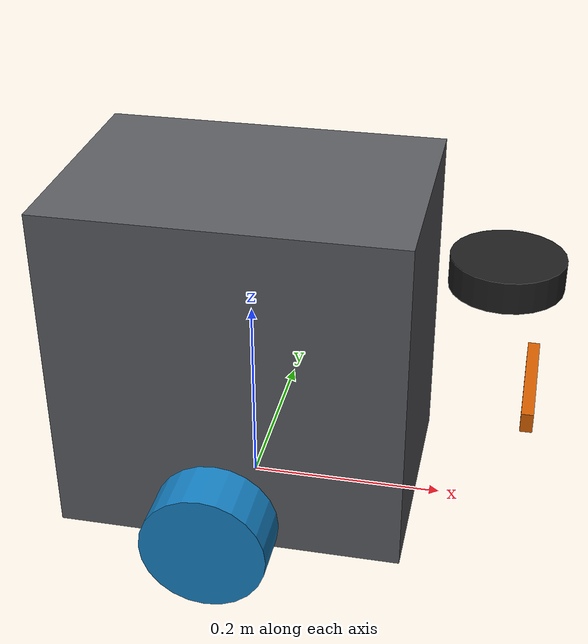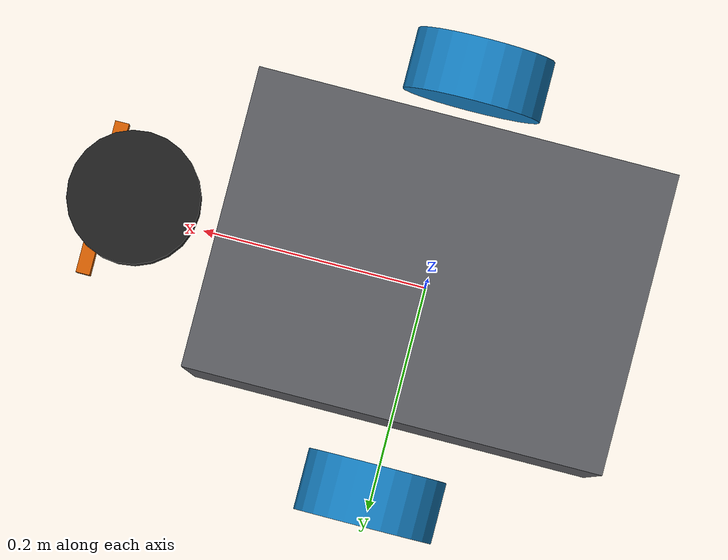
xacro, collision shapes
<?xml version="1.0" ?>
<robot name="turtlebot3_waffle" xmlns:xacro="http://ros.org/wiki/xacro">

  <xacro:include filename="$(find turtlebot3_description)/urdf/common_properties.xacro"/>
  <xacro:include filename="$(find turtlebot3_description)/urdf/freight.gazebo.xacro"/>

  <xacro:property name="r200_cam_rgb_px" value="0.005"/>
  <xacro:property name="r200_cam_rgb_py" value="0.018"/>
  <xacro:property name="r200_cam_rgb_pz" value="0.013"/>
  <xacro:property name="r200_cam_depth_offset" value="0.01"/>

  <!-- All links and joints of robot are defined in this file -->

  <!-- Base link of the robot -->
  <link name="base_link">
    <visual>
      <origin xyz="0 0 0" rpy="0 0 0"/>
      <geometry>
        <mesh filename="package://turtlebot3_description/meshes/freight/base_link.dae"/>
      </geometry>
      <material name="">
        <color rgba="0.356 0.361 0.376 1" />
      </material>
    </visual>

    <!-- Collision model of this link -->
    <collision>
      <origin xyz="0 0 0.175" rpy="0 0 0"/>
      <geometry>
        <box size="0.35 0.25 0.345"/>
      </geometry>
    </collision>

    <!-- inertial model of this link -->
    <inertial>
      <origin xyz="0 0 0.175" rpy="0 0 0"/>
      <mass value="5.0"/>
      <inertia ixx="0.16354167" ixy="0.0" ixz="0.0"
               iyy="0.16354167" iyz="0.0"
               izz="0.225" />
    </inertial>
  </link>

  <!-- Creating the joint between base and left wheel -->
  <joint name="wheel_left_joint" type="continuous">
    <parent link="base_link"/>
    <child link="wheel_left_link"/>
    <origin xyz="0.0012914 0.18738 0.060325" rpy="-1.57 0 0"/>
    <axis xyz="0 0 1"/>
  </joint>

  <!-- Left wheel link -->
  <link name="wheel_left_link">
    <visual>
      <origin rpy="1.57 0 0" xyz="0 0 0" />
      <geometry>
        <mesh filename="package://turtlebot3_description/meshes/freight/l_wheel_link.STL" />
      </geometry>
      <material name="">
        <color rgba="0.086 0.506 0.767 1" />
      </material>
    </visual>

    <collision>
      <origin xyz="0 0 0" rpy="0 0 0"/>
      <geometry>
        <cylinder length="0.054" radius="0.061"/>
      </geometry>
    </collision>

    <inertial>
      <origin xyz="0 0 0" />
      <mass value="2.8498940e-02" />
      <inertia ixx="1.1175580e-05" ixy="-4.2369783e-11" ixz="-5.9381719e-09"
               iyy="1.1192413e-05" iyz="-1.4400107e-11"
               izz="2.0712558e-05" />
      </inertial>
  </link>

  <!-- Right wheel joint -->
  <joint name="wheel_right_joint" type="continuous">
    <parent link="base_link"/>
    <child link="wheel_right_link"/>
    <origin xyz="0.0012914 -0.18738 0.060325" rpy="-1.57 0 0"/>
    <axis xyz="0 0 1"/>
  </joint>

  <!-- Right wheel link -->
  <link name="wheel_right_link">
    <visual>
      <origin rpy="1.57 0 0" xyz="0 0 0" />
      <geometry>
        <mesh filename="package://turtlebot3_description/meshes/freight/l_wheel_link.STL" />
      </geometry>
      <material name="">
        <color rgba="0.086 0.506 0.767 1" />
      </material>
    </visual>

    <collision>
      <origin xyz="0 0 0" rpy="0 0 0"/>
      <geometry>
        <cylinder length="0.054" radius="0.061"/>
      </geometry>
    </collision>

    <inertial>
      <origin xyz="0 0 0" />
      <mass value="2.8498940e-02" />
      <inertia ixx="1.1175580e-05" ixy="-4.2369783e-11" ixz="-5.9381719e-09"
               iyy="1.1192413e-05" iyz="-1.4400107e-11"
               izz="2.0712558e-05" />
      </inertial>
  </link>

  <!-- Defining links and joints for all snesors -->
  <!-- IMU -->
  <joint name="imu_joint" type="fixed">
    <parent link="base_link"/>
    <child link="imu_link"/>
    <origin xyz="0.0 0 0.068" rpy="0 0 0"/>
  </joint>

  <link name="imu_link"/>

  <!-- 2D LIDAR -->
  <joint name="scan_joint" type="fixed">
    <parent link="base_link"/>
    <child link="base_scan"/>
    <origin rpy="0 0 0" xyz="0.235 0 0.2778" />
  </joint>

  <link name="base_scan">
    <visual>
      <origin xyz="0 0 0" rpy="0 0 0"/>
      <geometry>
        <mesh filename="package://turtlebot3_description/meshes/sensors/lds.stl" scale="0.001 0.001 0.001"/>
      </geometry>
      <material name="dark"/>
    </visual>

    <collision>
      <origin xyz="0.015 0 -0.0065" rpy="0 0 0"/>
      <geometry>
        <cylinder length="0.0315" radius="0.055"/>
      </geometry>
    </collision>

    <inertial>
      <mass value="0.114" />
      <origin xyz="0 0 0" />
      <inertia ixx="0.001" ixy="0.0" ixz="0.0"
               iyy="0.001" iyz="0.0"
               izz="0.001" />
    </inertial>
  </link>

  <!-- RGBD Camera -->

  <joint name="camera_joint" type="fixed">
    <origin xyz="0.28 -0.064 0.138" rpy="0 0 0"/>
    <parent link="base_link"/>
    <child link="camera_link"/>
  </joint>

  <link name="camera_link">
    <visual>
     <origin xyz="0 0 0" rpy="1.57 0 1.57"/>
      <geometry>
       <mesh filename="package://turtlebot3_description/meshes/sensors/r200.dae" />
      </geometry>
    </visual>
    <collision>
      <origin xyz="0.003 0.065 0.007" rpy="0 0 0"/>
      <geometry>
        <box size="0.012 0.132 0.020"/>
      </geometry>
    </collision>
  </link>

  <joint name="camera_rgb_joint" type="fixed">
    <origin xyz="${r200_cam_rgb_px} ${r200_cam_rgb_py} ${r200_cam_rgb_pz}" rpy="0 0 0"/>
    <parent link="camera_link"/>
    <child link="camera_rgb_frame"/>
  </joint>
  <link name="camera_rgb_frame"/>

  <joint name="camera_rgb_optical_joint" type="fixed">
    <origin xyz="0 0 0" rpy="-1.57 0 -1.57"/>
    <parent link="camera_rgb_frame"/>
    <child link="camera_rgb_optical_frame"/>
  </joint>
  <link name="camera_rgb_optical_frame"/>

  <joint name="camera_depth_joint" type="fixed">
    <origin xyz="${r200_cam_rgb_px} ${r200_cam_rgb_py + r200_cam_depth_offset} ${r200_cam_rgb_pz}" rpy="0 0 0"/>
    <parent link="camera_link"/>
    <child link="camera_depth_frame"/>
  </joint>
  <link name="camera_depth_frame"/>

  <joint name="camera_depth_optical_joint" type="fixed">
    <origin xyz="0 0 0" rpy="-1.57 0 -1.57"/>
    <parent link="camera_depth_frame"/>
    <child link="camera_depth_optical_frame"/>
  </joint>
  <link name="camera_depth_optical_frame"/>

</robot>
